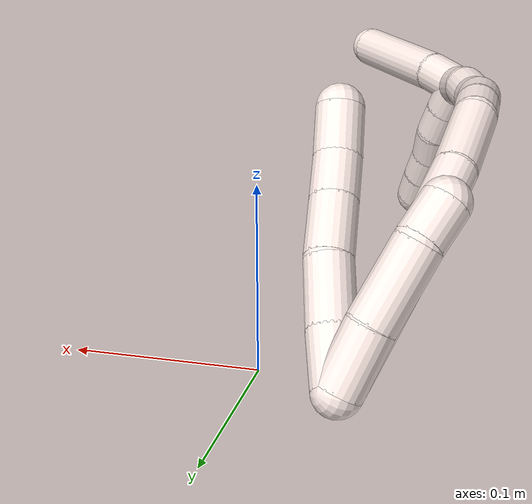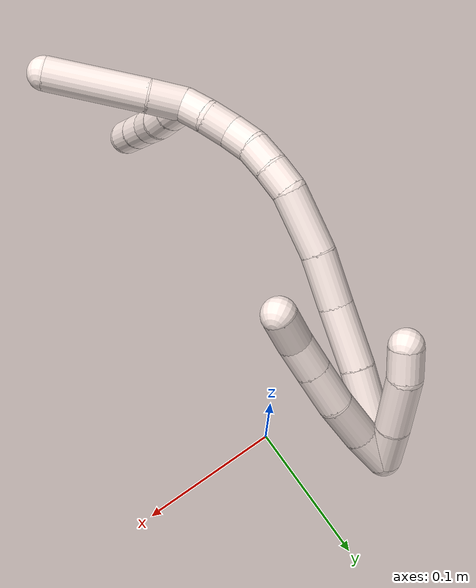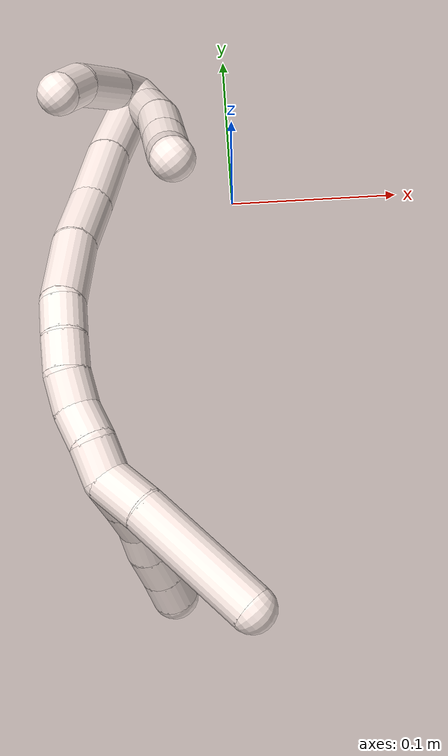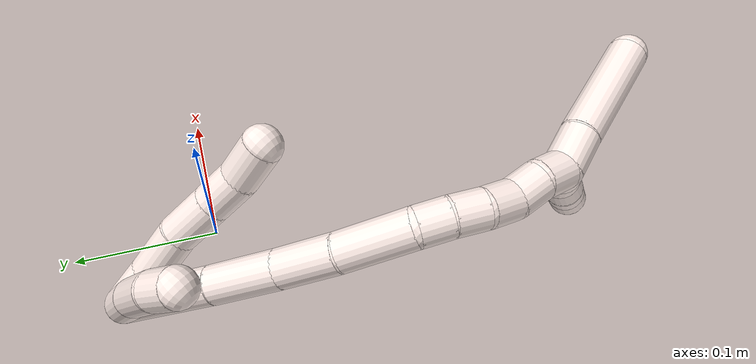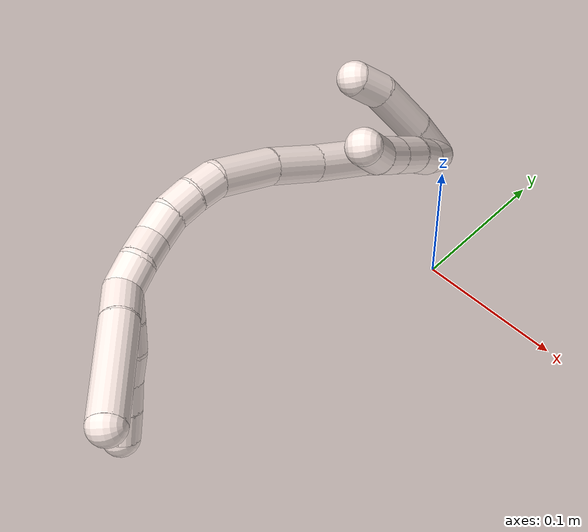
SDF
<sdf version="1.7">
 <world name="default">
  <model name="11">
   <static>0</static>
   <link name="11">
    <collision name="collision-cylinder-e_1_2_8">
     <pose>-0.011256 -0.010066 0.000415 1.52961 -0.840747 -0.810474</pose>
     <geometry><cylinder><radius>0.0125</radius><length>0.030211</length></cylinder></geometry>
     <surface>
      <friction><ode><mu>1.16</mu><mu2>1.16</mu2><slip1>0</slip1><slip2>0</slip2></ode></friction>
      <contact><ode><kp>1e+06</kp><kd>1</kd><max_vel>0</max_vel><min_depth>0.001</min_depth></ode></contact>
     </surface>
    </collision>
    <visual name="visual-cylinder-e_1_2_8">
     <pose>-0.011256 -0.010066 0.000415 1.52961 -0.840747 -0.810474</pose>
     <geometry><cylinder><radius>0.0125</radius><length>0.030211</length></cylinder></geometry>
     <material><ambient>1 0.933333 0.909804 1</ambient></material>
    </visual>
    <collision name="collision-cylinder-e_2_8_9">
     <pose>-0.036887 -0.0306 0.00135 1.52114 -0.940763 -0.901215</pose>
     <geometry><cylinder><radius>0.0125</radius><length>0.035581</length></cylinder></geometry>
     <surface>
      <friction><ode><mu>1.16</mu><mu2>1.16</mu2><slip1>0</slip1><slip2>0</slip2></ode></friction>
      <contact><ode><kp>1e+06</kp><kd>1</kd><max_vel>0</max_vel><min_depth>0.001</min_depth></ode></contact>
     </surface>
    </collision>
    <visual name="visual-cylinder-e_2_8_9">
     <pose>-0.036887 -0.0306 0.00135 1.52114 -0.940763 -0.901215</pose>
     <geometry><cylinder><radius>0.0125</radius><length>0.035581</length></cylinder></geometry>
     <material><ambient>1 0.933333 0.909804 1</ambient></material>
    </visual>
    <collision name="collision-cylinder-e_3_9_10">
     <pose>-0.063589 -0.050959 -0.000145 1.77174 -0.884701 -1.05096</pose>
     <geometry><cylinder><radius>0.0125</radius><length>0.031866</length></cylinder></geometry>
     <surface>
      <friction><ode><mu>1.16</mu><mu2>1.16</mu2><slip1>0</slip1><slip2>0</slip2></ode></friction>
      <contact><ode><kp>1e+06</kp><kd>1</kd><max_vel>0</max_vel><min_depth>0.001</min_depth></ode></contact>
     </surface>
    </collision>
    <visual name="visual-cylinder-e_3_9_10">
     <pose>-0.063589 -0.050959 -0.000145 1.77174 -0.884701 -1.05096</pose>
     <geometry><cylinder><radius>0.0125</radius><length>0.031866</length></cylinder></geometry>
     <material><ambient>1 0.933333 0.909804 1</ambient></material>
    </visual>
    <collision name="collision-cylinder-e_4_10_11">
     <pose>-0.085755 -0.068531 -0.003645 1.76192 -0.898983 -1.05822</pose>
     <geometry><cylinder><radius>0.0125</radius><length>0.025138</length></cylinder></geometry>
     <surface>
      <friction><ode><mu>1.16</mu><mu2>1.16</mu2><slip1>0</slip1><slip2>0</slip2></ode></friction>
      <contact><ode><kp>1e+06</kp><kd>1</kd><max_vel>0</max_vel><min_depth>0.001</min_depth></ode></contact>
     </surface>
    </collision>
    <visual name="visual-cylinder-e_4_10_11">
     <pose>-0.085755 -0.068531 -0.003645 1.76192 -0.898983 -1.05822</pose>
     <geometry><cylinder><radius>0.0125</radius><length>0.025138</length></cylinder></geometry>
     <material><ambient>1 0.933333 0.909804 1</ambient></material>
    </visual>
    <collision name="collision-cylinder-e_5_11_6">
     <pose>-0.107667 -0.082472 -0.00495 1.54186 -1.0923 -1.06679</pose>
     <geometry><cylinder><radius>0.0125</radius><length>0.027203</length></cylinder></geometry>
     <surface>
      <friction><ode><mu>1.16</mu><mu2>1.16</mu2><slip1>0</slip1><slip2>0</slip2></ode></friction>
      <contact><ode><kp>1e+06</kp><kd>1</kd><max_vel>0</max_vel><min_depth>0.001</min_depth></ode></contact>
     </surface>
    </collision>
    <visual name="visual-cylinder-e_5_11_6">
     <pose>-0.107667 -0.082472 -0.00495 1.54186 -1.0923 -1.06679</pose>
     <geometry><cylinder><radius>0.0125</radius><length>0.027203</length></cylinder></geometry>
     <material><ambient>1 0.933333 0.909804 1</ambient></material>
    </visual>
    <collision name="collision-cylinder-e_1_2_12">
     <pose>-0.016352 -2.8e-05 -0.003467 3.13342 -1.36188 -3.13151</pose>
     <geometry><cylinder><radius>0.0125</radius><length>0.033431</length></cylinder></geometry>
     <surface>
      <friction><ode><mu>1.16</mu><mu2>1.16</mu2><slip1>0</slip1><slip2>0</slip2></ode></friction>
      <contact><ode><kp>1e+06</kp><kd>1</kd><max_vel>0</max_vel><min_depth>0.001</min_depth></ode></contact>
     </surface>
    </collision>
    <visual name="visual-cylinder-e_1_2_12">
     <pose>-0.016352 -2.8e-05 -0.003467 3.13342 -1.36188 -3.13151</pose>
     <geometry><cylinder><radius>0.0125</radius><length>0.033431</length></cylinder></geometry>
     <material><ambient>1 0.933333 0.909804 1</ambient></material>
    </visual>
    <collision name="collision-cylinder-e_2_12_13">
     <pose>-0.053475 -0.000686 -0.013161 3.04095 -1.27811 -3.00624</pose>
     <geometry><cylinder><radius>0.0125</radius><length>0.043387</length></cylinder></geometry>
     <surface>
      <friction><ode><mu>1.16</mu><mu2>1.16</mu2><slip1>0</slip1><slip2>0</slip2></ode></friction>
      <contact><ode><kp>1e+06</kp><kd>1</kd><max_vel>0</max_vel><min_depth>0.001</min_depth></ode></contact>
     </surface>
    </collision>
    <visual name="visual-cylinder-e_2_12_13">
     <pose>-0.053475 -0.000686 -0.013161 3.04095 -1.27811 -3.00624</pose>
     <geometry><cylinder><radius>0.0125</radius><length>0.043387</length></cylinder></geometry>
     <material><ambient>1 0.933333 0.909804 1</ambient></material>
    </visual>
    <collision name="collision-cylinder-e_3_13_5">
     <pose>-0.084255 -0.003877 -0.024642 2.68771 -1.04222 -2.37667</pose>
     <geometry><cylinder><radius>0.0125</radius><length>0.023182</length></cylinder></geometry>
     <surface>
      <friction><ode><mu>1.16</mu><mu2>1.16</mu2><slip1>0</slip1><slip2>0</slip2></ode></friction>
      <contact><ode><kp>1e+06</kp><kd>1</kd><max_vel>0</max_vel><min_depth>0.001</min_depth></ode></contact>
     </surface>
    </collision>
    <visual name="visual-cylinder-e_3_13_5">
     <pose>-0.084255 -0.003877 -0.024642 2.68771 -1.04222 -2.37667</pose>
     <geometry><cylinder><radius>0.0125</radius><length>0.023182</length></cylinder></geometry>
     <material><ambient>1 0.933333 0.909804 1</ambient></material>
    </visual>
    <collision name="collision-cylinder-e_1_2_14">
     <pose>-0.023428 -0.017752 -0.01742 2.34675 -0.755524 -1.51464</pose>
     <geometry><cylinder><radius>0.0125</radius><length>0.068336</length></cylinder></geometry>
     <surface>
      <friction><ode><mu>1.16</mu><mu2>1.16</mu2><slip1>0</slip1><slip2>0</slip2></ode></friction>
      <contact><ode><kp>1e+06</kp><kd>1</kd><max_vel>0</max_vel><min_depth>0.001</min_depth></ode></contact>
     </surface>
    </collision>
    <visual name="visual-cylinder-e_1_2_14">
     <pose>-0.023428 -0.017752 -0.01742 2.34675 -0.755524 -1.51464</pose>
     <geometry><cylinder><radius>0.0125</radius><length>0.068336</length></cylinder></geometry>
     <material><ambient>1 0.933333 0.909804 1</ambient></material>
    </visual>
    <collision name="collision-cylinder-e_2_14_15">
     <pose>-0.061849 -0.048606 -0.046395 2.29352 -0.709259 -1.37395</pose>
     <geometry><cylinder><radius>0.0125</radius><length>0.046043</length></cylinder></geometry>
     <surface>
      <friction><ode><mu>1.16</mu><mu2>1.16</mu2><slip1>0</slip1><slip2>0</slip2></ode></friction>
      <contact><ode><kp>1e+06</kp><kd>1</kd><max_vel>0</max_vel><min_depth>0.001</min_depth></ode></contact>
     </surface>
    </collision>
    <visual name="visual-cylinder-e_2_14_15">
     <pose>-0.061849 -0.048606 -0.046395 2.29352 -0.709259 -1.37395</pose>
     <geometry><cylinder><radius>0.0125</radius><length>0.046043</length></cylinder></geometry>
     <material><ambient>1 0.933333 0.909804 1</ambient></material>
    </visual>
    <collision name="collision-cylinder-e_3_15_16">
     <pose>-0.090209 -0.072367 -0.067134 2.28208 -0.759778 -1.43332</pose>
     <geometry><cylinder><radius>0.0125</radius><length>0.038813</length></cylinder></geometry>
     <surface>
      <friction><ode><mu>1.16</mu><mu2>1.16</mu2><slip1>0</slip1><slip2>0</slip2></ode></friction>
      <contact><ode><kp>1e+06</kp><kd>1</kd><max_vel>0</max_vel><min_depth>0.001</min_depth></ode></contact>
     </surface>
    </collision>
    <visual name="visual-cylinder-e_3_15_16">
     <pose>-0.090209 -0.072367 -0.067134 2.28208 -0.759778 -1.43332</pose>
     <geometry><cylinder><radius>0.0125</radius><length>0.038813</length></cylinder></geometry>
     <material><ambient>1 0.933333 0.909804 1</ambient></material>
    </visual>
    <collision name="collision-cylinder-e_4_16_17">
     <pose>-0.117924 -0.09809 -0.086737 2.1758 -0.664524 -1.16413</pose>
     <geometry><cylinder><radius>0.0125</radius><length>0.046534</length></cylinder></geometry>
     <surface>
      <friction><ode><mu>1.16</mu><mu2>1.16</mu2><slip1>0</slip1><slip2>0</slip2></ode></friction>
      <contact><ode><kp>1e+06</kp><kd>1</kd><max_vel>0</max_vel><min_depth>0.001</min_depth></ode></contact>
     </surface>
    </collision>
    <visual name="visual-cylinder-e_4_16_17">
     <pose>-0.117924 -0.09809 -0.086737 2.1758 -0.664524 -1.16413</pose>
     <geometry><cylinder><radius>0.0125</radius><length>0.046534</length></cylinder></geometry>
     <material><ambient>1 0.933333 0.909804 1</ambient></material>
    </visual>
    <collision name="collision-cylinder-e_5_17_18">
     <pose>-0.135567 -0.121367 -0.10188 2.09299 -0.334621 -0.568296</pose>
     <geometry><cylinder><radius>0.0125</radius><length>0.020063</length></cylinder></geometry>
     <surface>
      <friction><ode><mu>1.16</mu><mu2>1.16</mu2><slip1>0</slip1><slip2>0</slip2></ode></friction>
      <contact><ode><kp>1e+06</kp><kd>1</kd><max_vel>0</max_vel><min_depth>0.001</min_depth></ode></contact>
     </surface>
    </collision>
    <visual name="visual-cylinder-e_5_17_18">
     <pose>-0.135567 -0.121367 -0.10188 2.09299 -0.334621 -0.568296</pose>
     <geometry><cylinder><radius>0.0125</radius><length>0.020063</length></cylinder></geometry>
     <material><ambient>1 0.933333 0.909804 1</ambient></material>
    </visual>
    <collision name="collision-cylinder-e_6_18_19">
     <pose>-0.140851 -0.138017 -0.111657 2.11017 -0.199664 -0.349778</pose>
     <geometry><cylinder><radius>0.0125</radius><length>0.020065</length></cylinder></geometry>
     <surface>
      <friction><ode><mu>1.16</mu><mu2>1.16</mu2><slip1>0</slip1><slip2>0</slip2></ode></friction>
      <contact><ode><kp>1e+06</kp><kd>1</kd><max_vel>0</max_vel><min_depth>0.001</min_depth></ode></contact>
     </surface>
    </collision>
    <visual name="visual-cylinder-e_6_18_19">
     <pose>-0.140851 -0.138017 -0.111657 2.11017 -0.199664 -0.349778</pose>
     <geometry><cylinder><radius>0.0125</radius><length>0.020065</length></cylinder></geometry>
     <material><ambient>1 0.933333 0.909804 1</ambient></material>
    </visual>
    <collision name="collision-cylinder-e_7_19_20">
     <pose>-0.142716 -0.155665 -0.120713 1.98105 0.012502 0.01907</pose>
     <geometry><cylinder><radius>0.0125</radius><length>0.02009</length></cylinder></geometry>
     <surface>
      <friction><ode><mu>1.16</mu><mu2>1.16</mu2><slip1>0</slip1><slip2>0</slip2></ode></friction>
      <contact><ode><kp>1e+06</kp><kd>1</kd><max_vel>0</max_vel><min_depth>0.001</min_depth></ode></contact>
     </surface>
    </collision>
    <visual name="visual-cylinder-e_7_19_20">
     <pose>-0.142716 -0.155665 -0.120713 1.98105 0.012502 0.01907</pose>
     <geometry><cylinder><radius>0.0125</radius><length>0.02009</length></cylinder></geometry>
     <material><ambient>1 0.933333 0.909804 1</ambient></material>
    </visual>
    <collision name="collision-cylinder-e_8_20_21">
     <pose>-0.144714 -0.174536 -0.126363 1.73939 -0.213478 -0.2525</pose>
     <geometry><cylinder><radius>0.0125</radius><length>0.020055</length></cylinder></geometry>
     <surface>
      <friction><ode><mu>1.16</mu><mu2>1.16</mu2><slip1>0</slip1><slip2>0</slip2></ode></friction>
      <contact><ode><kp>1e+06</kp><kd>1</kd><max_vel>0</max_vel><min_depth>0.001</min_depth></ode></contact>
     </surface>
    </collision>
    <visual name="visual-cylinder-e_8_20_21">
     <pose>-0.144714 -0.174536 -0.126363 1.73939 -0.213478 -0.2525</pose>
     <geometry><cylinder><radius>0.0125</radius><length>0.020055</length></cylinder></geometry>
     <material><ambient>1 0.933333 0.909804 1</ambient></material>
    </visual>
    <collision name="collision-cylinder-e_9_21_1">
     <pose>-0.146355 -0.193729 -0.130993 1.87427 0.048366 0.065816</pose>
     <geometry><cylinder><radius>0.0125</radius><length>0.02</length></cylinder></geometry>
     <surface>
      <friction><ode><mu>1.16</mu><mu2>1.16</mu2><slip1>0</slip1><slip2>0</slip2></ode></friction>
      <contact><ode><kp>1e+06</kp><kd>1</kd><max_vel>0</max_vel><min_depth>0.001</min_depth></ode></contact>
     </surface>
    </collision>
    <visual name="visual-cylinder-e_9_21_1">
     <pose>-0.146355 -0.193729 -0.130993 1.87427 0.048366 0.065816</pose>
     <geometry><cylinder><radius>0.0125</radius><length>0.02</length></cylinder></geometry>
     <material><ambient>1 0.933333 0.909804 1</ambient></material>
    </visual>
    <collision name="collision-cylinder-e_1_1_22">
     <pose>-0.148061 -0.215652 -0.131019 1.33642 -0.170207 -0.134474</pose>
     <geometry><cylinder><radius>0.0125</radius><length>0.025851</length></cylinder></geometry>
     <surface>
      <friction><ode><mu>1.16</mu><mu2>1.16</mu2><slip1>0</slip1><slip2>0</slip2></ode></friction>
      <contact><ode><kp>1e+06</kp><kd>1</kd><max_vel>0</max_vel><min_depth>0.001</min_depth></ode></contact>
     </surface>
    </collision>
    <visual name="visual-cylinder-e_1_1_22">
     <pose>-0.148061 -0.215652 -0.131019 1.33642 -0.170207 -0.134474</pose>
     <geometry><cylinder><radius>0.0125</radius><length>0.025851</length></cylinder></geometry>
     <material><ambient>1 0.933333 0.909804 1</ambient></material>
    </visual>
    <collision name="collision-cylinder-e_2_22_4">
     <pose>-0.153052 -0.264497 -0.121916 1.40381 -0.075623 -0.063952</pose>
     <geometry><cylinder><radius>0.0125</radius><length>0.074149</length></cylinder></geometry>
     <surface>
      <friction><ode><mu>1.16</mu><mu2>1.16</mu2><slip1>0</slip1><slip2>0</slip2></ode></friction>
      <contact><ode><kp>1e+06</kp><kd>1</kd><max_vel>0</max_vel><min_depth>0.001</min_depth></ode></contact>
     </surface>
    </collision>
    <visual name="visual-cylinder-e_2_22_4">
     <pose>-0.153052 -0.264497 -0.121916 1.40381 -0.075623 -0.063952</pose>
     <geometry><cylinder><radius>0.0125</radius><length>0.074149</length></cylinder></geometry>
     <material><ambient>1 0.933333 0.909804 1</ambient></material>
    </visual>
    <collision name="collision-cylinder-e_1_1_23">
     <pose>-0.137697 -0.208789 -0.135595 1.85546 0.957057 1.21105</pose>
     <geometry><cylinder><radius>0.0125</radius><length>0.02</length></cylinder></geometry>
     <surface>
      <friction><ode><mu>1.16</mu><mu2>1.16</mu2><slip1>0</slip1><slip2>0</slip2></ode></friction>
      <contact><ode><kp>1e+06</kp><kd>1</kd><max_vel>0</max_vel><min_depth>0.001</min_depth></ode></contact>
     </surface>
    </collision>
    <visual name="visual-cylinder-e_1_1_23">
     <pose>-0.137697 -0.208789 -0.135595 1.85546 0.957057 1.21105</pose>
     <geometry><cylinder><radius>0.0125</radius><length>0.02</length></cylinder></geometry>
     <material><ambient>1 0.933333 0.909804 1</ambient></material>
    </visual>
    <collision name="collision-cylinder-e_2_23_24">
     <pose>-0.121264 -0.219638 -0.139081 1.9084 0.971553 1.28046</pose>
     <geometry><cylinder><radius>0.0125</radius><length>0.02</length></cylinder></geometry>
     <surface>
      <friction><ode><mu>1.16</mu><mu2>1.16</mu2><slip1>0</slip1><slip2>0</slip2></ode></friction>
      <contact><ode><kp>1e+06</kp><kd>1</kd><max_vel>0</max_vel><min_depth>0.001</min_depth></ode></contact>
     </surface>
    </collision>
    <visual name="visual-cylinder-e_2_23_24">
     <pose>-0.121264 -0.219638 -0.139081 1.9084 0.971553 1.28046</pose>
     <geometry><cylinder><radius>0.0125</radius><length>0.02</length></cylinder></geometry>
     <material><ambient>1 0.933333 0.909804 1</ambient></material>
    </visual>
    <collision name="collision-cylinder-e_3_24_25">
     <pose>-0.105309 -0.23019 -0.144609 2.18151 0.87848 1.4683</pose>
     <geometry><cylinder><radius>0.0125</radius><length>0.02</length></cylinder></geometry>
     <surface>
      <friction><ode><mu>1.16</mu><mu2>1.16</mu2><slip1>0</slip1><slip2>0</slip2></ode></friction>
      <contact><ode><kp>1e+06</kp><kd>1</kd><max_vel>0</max_vel><min_depth>0.001</min_depth></ode></contact>
     </surface>
    </collision>
    <visual name="visual-cylinder-e_3_24_25">
     <pose>-0.105309 -0.23019 -0.144609 2.18151 0.87848 1.4683</pose>
     <geometry><cylinder><radius>0.0125</radius><length>0.02</length></cylinder></geometry>
     <material><ambient>1 0.933333 0.909804 1</ambient></material>
    </visual>
    <collision name="collision-cylinder-e_4_25_26">
     <pose>-0.089862 -0.241224 -0.150768 1.97717 0.886639 1.24973</pose>
     <geometry><cylinder><radius>0.0125</radius><length>0.02</length></cylinder></geometry>
     <surface>
      <friction><ode><mu>1.16</mu><mu2>1.16</mu2><slip1>0</slip1><slip2>0</slip2></ode></friction>
      <contact><ode><kp>1e+06</kp><kd>1</kd><max_vel>0</max_vel><min_depth>0.001</min_depth></ode></contact>
     </surface>
    </collision>
    <visual name="visual-cylinder-e_4_25_26">
     <pose>-0.089862 -0.241224 -0.150768 1.97717 0.886639 1.24973</pose>
     <geometry><cylinder><radius>0.0125</radius><length>0.02</length></cylinder></geometry>
     <material><ambient>1 0.933333 0.909804 1</ambient></material>
    </visual>
    <collision name="collision-cylinder-e_5_26_3">
     <pose>-0.074401 -0.252699 -0.156163 2.04315 0.880645 1.31217</pose>
     <geometry><cylinder><radius>0.0125</radius><length>0.02</length></cylinder></geometry>
     <surface>
      <friction><ode><mu>1.16</mu><mu2>1.16</mu2><slip1>0</slip1><slip2>0</slip2></ode></friction>
      <contact><ode><kp>1e+06</kp><kd>1</kd><max_vel>0</max_vel><min_depth>0.001</min_depth></ode></contact>
     </surface>
    </collision>
    <visual name="visual-cylinder-e_5_26_3">
     <pose>-0.074401 -0.252699 -0.156163 2.04315 0.880645 1.31217</pose>
     <geometry><cylinder><radius>0.0125</radius><length>0.02</length></cylinder></geometry>
     <material><ambient>1 0.933333 0.909804 1</ambient></material>
    </visual>
    <collision name="collision-sphere-3">
     <pose>-0.066689 -0.258369 -0.159059 0 -0 0</pose>
     <geometry><sphere><radius>0.0125</radius></sphere></geometry>
     <surface>
      <friction><ode><mu>1.16</mu><mu2>1.16</mu2><slip1>0</slip1><slip2>0</slip2></ode></friction>
      <contact><ode><kp>1e+06</kp><kd>1</kd><max_vel>0</max_vel><min_depth>0.001</min_depth></ode></contact>
     </surface>
    </collision>
    <visual name="visual-sphere-3">
     <pose>-0.066689 -0.258369 -0.159059 0 -0 0</pose>
     <geometry><sphere><radius>0.0125</radius></sphere></geometry>
     <material><ambient>1 0.933333 0.909804 1</ambient></material>
    </visual>
    <collision name="collision-sphere-26">
     <pose>-0.082112 -0.24703 -0.153266 0 -0 0</pose>
     <geometry><sphere><radius>0.0125</radius></sphere></geometry>
     <surface>
      <friction><ode><mu>1.16</mu><mu2>1.16</mu2><slip1>0</slip1><slip2>0</slip2></ode></friction>
      <contact><ode><kp>1e+06</kp><kd>1</kd><max_vel>0</max_vel><min_depth>0.001</min_depth></ode></contact>
     </surface>
    </collision>
    <visual name="visual-sphere-26">
     <pose>-0.082112 -0.24703 -0.153266 0 -0 0</pose>
     <geometry><sphere><radius>0.0125</radius></sphere></geometry>
     <material><ambient>1 0.933333 0.909804 1</ambient></material>
    </visual>
    <collision name="collision-sphere-25">
     <pose>-0.097611 -0.235419 -0.14827 0 -0 0</pose>
     <geometry><sphere><radius>0.0125</radius></sphere></geometry>
     <surface>
      <friction><ode><mu>1.16</mu><mu2>1.16</mu2><slip1>0</slip1><slip2>0</slip2></ode></friction>
      <contact><ode><kp>1e+06</kp><kd>1</kd><max_vel>0</max_vel><min_depth>0.001</min_depth></ode></contact>
     </surface>
    </collision>
    <visual name="visual-sphere-25">
     <pose>-0.097611 -0.235419 -0.14827 0 -0 0</pose>
     <geometry><sphere><radius>0.0125</radius></sphere></geometry>
     <material><ambient>1 0.933333 0.909804 1</ambient></material>
    </visual>
    <collision name="collision-sphere-24">
     <pose>-0.113007 -0.22496 -0.140949 0 -0 0</pose>
     <geometry><sphere><radius>0.0125</radius></sphere></geometry>
     <surface>
      <friction><ode><mu>1.16</mu><mu2>1.16</mu2><slip1>0</slip1><slip2>0</slip2></ode></friction>
      <contact><ode><kp>1e+06</kp><kd>1</kd><max_vel>0</max_vel><min_depth>0.001</min_depth></ode></contact>
     </surface>
    </collision>
    <visual name="visual-sphere-24">
     <pose>-0.113007 -0.22496 -0.140949 0 -0 0</pose>
     <geometry><sphere><radius>0.0125</radius></sphere></geometry>
     <material><ambient>1 0.933333 0.909804 1</ambient></material>
    </visual>
    <collision name="collision-sphere-23">
     <pose>-0.129522 -0.214317 -0.137212 0 -0 0</pose>
     <geometry><sphere><radius>0.0125</radius></sphere></geometry>
     <surface>
      <friction><ode><mu>1.16</mu><mu2>1.16</mu2><slip1>0</slip1><slip2>0</slip2></ode></friction>
      <contact><ode><kp>1e+06</kp><kd>1</kd><max_vel>0</max_vel><min_depth>0.001</min_depth></ode></contact>
     </surface>
    </collision>
    <visual name="visual-sphere-23">
     <pose>-0.129522 -0.214317 -0.137212 0 -0 0</pose>
     <geometry><sphere><radius>0.0125</radius></sphere></geometry>
     <material><ambient>1 0.933333 0.909804 1</ambient></material>
    </visual>
    <collision name="collision-sphere-4">
     <pose>-0.155853 -0.300951 -0.115772 0 -0 0</pose>
     <geometry><sphere><radius>0.0125</radius></sphere></geometry>
     <surface>
      <friction><ode><mu>1.16</mu><mu2>1.16</mu2><slip1>0</slip1><slip2>0</slip2></ode></friction>
      <contact><ode><kp>1e+06</kp><kd>1</kd><max_vel>0</max_vel><min_depth>0.001</min_depth></ode></contact>
     </surface>
    </collision>
    <visual name="visual-sphere-4">
     <pose>-0.155853 -0.300951 -0.115772 0 -0 0</pose>
     <geometry><sphere><radius>0.0125</radius></sphere></geometry>
     <material><ambient>1 0.933333 0.909804 1</ambient></material>
    </visual>
    <collision name="collision-sphere-22">
     <pose>-0.150251 -0.228042 -0.128061 0 -0 0</pose>
     <geometry><sphere><radius>0.0125</radius></sphere></geometry>
     <surface>
      <friction><ode><mu>1.16</mu><mu2>1.16</mu2><slip1>0</slip1><slip2>0</slip2></ode></friction>
      <contact><ode><kp>1e+06</kp><kd>1</kd><max_vel>0</max_vel><min_depth>0.001</min_depth></ode></contact>
     </surface>
    </collision>
    <visual name="visual-sphere-22">
     <pose>-0.150251 -0.228042 -0.128061 0 -0 0</pose>
     <geometry><sphere><radius>0.0125</radius></sphere></geometry>
     <material><ambient>1 0.933333 0.909804 1</ambient></material>
    </visual>
    <collision name="collision-sphere-1">
     <pose>-0.145872 -0.203262 -0.133978 0 -0 0</pose>
     <geometry><sphere><radius>0.0125</radius></sphere></geometry>
     <surface>
      <friction><ode><mu>1.16</mu><mu2>1.16</mu2><slip1>0</slip1><slip2>0</slip2></ode></friction>
      <contact><ode><kp>1e+06</kp><kd>1</kd><max_vel>0</max_vel><min_depth>0.001</min_depth></ode></contact>
     </surface>
    </collision>
    <visual name="visual-sphere-1">
     <pose>-0.145872 -0.203262 -0.133978 0 -0 0</pose>
     <geometry><sphere><radius>0.0125</radius></sphere></geometry>
     <material><ambient>1 0.933333 0.909804 1</ambient></material>
    </visual>
    <collision name="collision-sphere-21">
     <pose>-0.146839 -0.184197 -0.128008 0 -0 0</pose>
     <geometry><sphere><radius>0.0125</radius></sphere></geometry>
     <surface>
      <friction><ode><mu>1.16</mu><mu2>1.16</mu2><slip1>0</slip1><slip2>0</slip2></ode></friction>
      <contact><ode><kp>1e+06</kp><kd>1</kd><max_vel>0</max_vel><min_depth>0.001</min_depth></ode></contact>
     </surface>
    </collision>
    <visual name="visual-sphere-21">
     <pose>-0.146839 -0.184197 -0.128008 0 -0 0</pose>
     <geometry><sphere><radius>0.0125</radius></sphere></geometry>
     <material><ambient>1 0.933333 0.909804 1</ambient></material>
    </visual>
    <collision name="collision-sphere-6">
     <pose>-0.119741 -0.088732 -0.004769 0 -0 0</pose>
     <geometry><sphere><radius>0.0125</radius></sphere></geometry>
     <surface>
      <friction><ode><mu>1.16</mu><mu2>1.16</mu2><slip1>0</slip1><slip2>0</slip2></ode></friction>
      <contact><ode><kp>1e+06</kp><kd>1</kd><max_vel>0</max_vel><min_depth>0.001</min_depth></ode></contact>
     </surface>
    </collision>
    <visual name="visual-sphere-6">
     <pose>-0.119741 -0.088732 -0.004769 0 -0 0</pose>
     <geometry><sphere><radius>0.0125</radius></sphere></geometry>
     <material><ambient>1 0.933333 0.909804 1</ambient></material>
    </visual>
    <collision name="collision-sphere-11">
     <pose>-0.095593 -0.076211 -0.005131 0 -0 0</pose>
     <geometry><sphere><radius>0.0125</radius></sphere></geometry>
     <surface>
      <friction><ode><mu>1.16</mu><mu2>1.16</mu2><slip1>0</slip1><slip2>0</slip2></ode></friction>
      <contact><ode><kp>1e+06</kp><kd>1</kd><max_vel>0</max_vel><min_depth>0.001</min_depth></ode></contact>
     </surface>
    </collision>
    <visual name="visual-sphere-11">
     <pose>-0.095593 -0.076211 -0.005131 0 -0 0</pose>
     <geometry><sphere><radius>0.0125</radius></sphere></geometry>
     <material><ambient>1 0.933333 0.909804 1</ambient></material>
    </visual>
    <collision name="collision-sphere-10">
     <pose>-0.075917 -0.06085 -0.002159 0 -0 0</pose>
     <geometry><sphere><radius>0.0125</radius></sphere></geometry>
     <surface>
      <friction><ode><mu>1.16</mu><mu2>1.16</mu2><slip1>0</slip1><slip2>0</slip2></ode></friction>
      <contact><ode><kp>1e+06</kp><kd>1</kd><max_vel>0</max_vel><min_depth>0.001</min_depth></ode></contact>
     </surface>
    </collision>
    <visual name="visual-sphere-10">
     <pose>-0.075917 -0.06085 -0.002159 0 -0 0</pose>
     <geometry><sphere><radius>0.0125</radius></sphere></geometry>
     <material><ambient>1 0.933333 0.909804 1</ambient></material>
    </visual>
    <collision name="collision-sphere-9">
     <pose>-0.051262 -0.041069 0.00187 0 -0 0</pose>
     <geometry><sphere><radius>0.0125</radius></sphere></geometry>
     <surface>
      <friction><ode><mu>1.16</mu><mu2>1.16</mu2><slip1>0</slip1><slip2>0</slip2></ode></friction>
      <contact><ode><kp>1e+06</kp><kd>1</kd><max_vel>0</max_vel><min_depth>0.001</min_depth></ode></contact>
     </surface>
    </collision>
    <visual name="visual-sphere-9">
     <pose>-0.051262 -0.041069 0.00187 0 -0 0</pose>
     <geometry><sphere><radius>0.0125</radius></sphere></geometry>
     <material><ambient>1 0.933333 0.909804 1</ambient></material>
    </visual>
    <collision name="collision-sphere-2">
     <geometry><sphere><radius>0.0125</radius></sphere></geometry>
     <surface>
      <friction><ode><mu>1.16</mu><mu2>1.16</mu2><slip1>0</slip1><slip2>0</slip2></ode></friction>
      <contact><ode><kp>1e+06</kp><kd>1</kd><max_vel>0</max_vel><min_depth>0.001</min_depth></ode></contact>
     </surface>
    </collision>
    <visual name="visual-sphere-2">
     <geometry><sphere><radius>0.0125</radius></sphere></geometry>
     <material><ambient>1 0.933333 0.909804 1</ambient></material>
    </visual>
    <collision name="collision-sphere-19">
     <pose>-0.142841 -0.146454 -0.116707 0 -0 0</pose>
     <geometry><sphere><radius>0.0125</radius></sphere></geometry>
     <surface>
      <friction><ode><mu>1.16</mu><mu2>1.16</mu2><slip1>0</slip1><slip2>0</slip2></ode></friction>
      <contact><ode><kp>1e+06</kp><kd>1</kd><max_vel>0</max_vel><min_depth>0.001</min_depth></ode></contact>
     </surface>
    </collision>
    <visual name="visual-sphere-19">
     <pose>-0.142841 -0.146454 -0.116707 0 -0 0</pose>
     <geometry><sphere><radius>0.0125</radius></sphere></geometry>
     <material><ambient>1 0.933333 0.909804 1</ambient></material>
    </visual>
    <collision name="collision-sphere-8">
     <pose>-0.022512 -0.020131 0.00083 0 -0 0</pose>
     <geometry><sphere><radius>0.0125</radius></sphere></geometry>
     <surface>
      <friction><ode><mu>1.16</mu><mu2>1.16</mu2><slip1>0</slip1><slip2>0</slip2></ode></friction>
      <contact><ode><kp>1e+06</kp><kd>1</kd><max_vel>0</max_vel><min_depth>0.001</min_depth></ode></contact>
     </surface>
    </collision>
    <visual name="visual-sphere-8">
     <pose>-0.022512 -0.020131 0.00083 0 -0 0</pose>
     <geometry><sphere><radius>0.0125</radius></sphere></geometry>
     <material><ambient>1 0.933333 0.909804 1</ambient></material>
    </visual>
    <collision name="collision-sphere-12">
     <pose>-0.032704 -5.7e-05 -0.006933 0 -0 0</pose>
     <geometry><sphere><radius>0.0125</radius></sphere></geometry>
     <surface>
      <friction><ode><mu>1.16</mu><mu2>1.16</mu2><slip1>0</slip1><slip2>0</slip2></ode></friction>
      <contact><ode><kp>1e+06</kp><kd>1</kd><max_vel>0</max_vel><min_depth>0.001</min_depth></ode></contact>
     </surface>
    </collision>
    <visual name="visual-sphere-12">
     <pose>-0.032704 -5.7e-05 -0.006933 0 -0 0</pose>
     <geometry><sphere><radius>0.0125</radius></sphere></geometry>
     <material><ambient>1 0.933333 0.909804 1</ambient></material>
    </visual>
    <collision name="collision-sphere-13">
     <pose>-0.074246 -0.001314 -0.019388 0 -0 0</pose>
     <geometry><sphere><radius>0.0125</radius></sphere></geometry>
     <surface>
      <friction><ode><mu>1.16</mu><mu2>1.16</mu2><slip1>0</slip1><slip2>0</slip2></ode></friction>
      <contact><ode><kp>1e+06</kp><kd>1</kd><max_vel>0</max_vel><min_depth>0.001</min_depth></ode></contact>
     </surface>
    </collision>
    <visual name="visual-sphere-13">
     <pose>-0.074246 -0.001314 -0.019388 0 -0 0</pose>
     <geometry><sphere><radius>0.0125</radius></sphere></geometry>
     <material><ambient>1 0.933333 0.909804 1</ambient></material>
    </visual>
    <collision name="collision-sphere-5">
     <pose>-0.094264 -0.00644 -0.029895 0 -0 0</pose>
     <geometry><sphere><radius>0.0125</radius></sphere></geometry>
     <surface>
      <friction><ode><mu>1.16</mu><mu2>1.16</mu2><slip1>0</slip1><slip2>0</slip2></ode></friction>
      <contact><ode><kp>1e+06</kp><kd>1</kd><max_vel>0</max_vel><min_depth>0.001</min_depth></ode></contact>
     </surface>
    </collision>
    <visual name="visual-sphere-5">
     <pose>-0.094264 -0.00644 -0.029895 0 -0 0</pose>
     <geometry><sphere><radius>0.0125</radius></sphere></geometry>
     <material><ambient>1 0.933333 0.909804 1</ambient></material>
    </visual>
    <collision name="collision-sphere-14">
     <pose>-0.046856 -0.035504 -0.03484 0 -0 0</pose>
     <geometry><sphere><radius>0.0125</radius></sphere></geometry>
     <surface>
      <friction><ode><mu>1.16</mu><mu2>1.16</mu2><slip1>0</slip1><slip2>0</slip2></ode></friction>
      <contact><ode><kp>1e+06</kp><kd>1</kd><max_vel>0</max_vel><min_depth>0.001</min_depth></ode></contact>
     </surface>
    </collision>
    <visual name="visual-sphere-14">
     <pose>-0.046856 -0.035504 -0.03484 0 -0 0</pose>
     <geometry><sphere><radius>0.0125</radius></sphere></geometry>
     <material><ambient>1 0.933333 0.909804 1</ambient></material>
    </visual>
    <collision name="collision-sphere-15">
     <pose>-0.076843 -0.061709 -0.05795 0 -0 0</pose>
     <geometry><sphere><radius>0.0125</radius></sphere></geometry>
     <surface>
      <friction><ode><mu>1.16</mu><mu2>1.16</mu2><slip1>0</slip1><slip2>0</slip2></ode></friction>
      <contact><ode><kp>1e+06</kp><kd>1</kd><max_vel>0</max_vel><min_depth>0.001</min_depth></ode></contact>
     </surface>
    </collision>
    <visual name="visual-sphere-15">
     <pose>-0.076843 -0.061709 -0.05795 0 -0 0</pose>
     <geometry><sphere><radius>0.0125</radius></sphere></geometry>
     <material><ambient>1 0.933333 0.909804 1</ambient></material>
    </visual>
    <collision name="collision-sphere-16">
     <pose>-0.103575 -0.083025 -0.076319 0 -0 0</pose>
     <geometry><sphere><radius>0.0125</radius></sphere></geometry>
     <surface>
      <friction><ode><mu>1.16</mu><mu2>1.16</mu2><slip1>0</slip1><slip2>0</slip2></ode></friction>
      <contact><ode><kp>1e+06</kp><kd>1</kd><max_vel>0</max_vel><min_depth>0.001</min_depth></ode></contact>
     </surface>
    </collision>
    <visual name="visual-sphere-16">
     <pose>-0.103575 -0.083025 -0.076319 0 -0 0</pose>
     <geometry><sphere><radius>0.0125</radius></sphere></geometry>
     <material><ambient>1 0.933333 0.909804 1</ambient></material>
    </visual>
    <collision name="collision-sphere-17">
     <pose>-0.132272 -0.113155 -0.097154 0 -0 0</pose>
     <geometry><sphere><radius>0.0125</radius></sphere></geometry>
     <surface>
      <friction><ode><mu>1.16</mu><mu2>1.16</mu2><slip1>0</slip1><slip2>0</slip2></ode></friction>
      <contact><ode><kp>1e+06</kp><kd>1</kd><max_vel>0</max_vel><min_depth>0.001</min_depth></ode></contact>
     </surface>
    </collision>
    <visual name="visual-sphere-17">
     <pose>-0.132272 -0.113155 -0.097154 0 -0 0</pose>
     <geometry><sphere><radius>0.0125</radius></sphere></geometry>
     <material><ambient>1 0.933333 0.909804 1</ambient></material>
    </visual>
    <collision name="collision-sphere-18">
     <pose>-0.138861 -0.12958 -0.106606 0 -0 0</pose>
     <geometry><sphere><radius>0.0125</radius></sphere></geometry>
     <surface>
      <friction><ode><mu>1.16</mu><mu2>1.16</mu2><slip1>0</slip1><slip2>0</slip2></ode></friction>
      <contact><ode><kp>1e+06</kp><kd>1</kd><max_vel>0</max_vel><min_depth>0.001</min_depth></ode></contact>
     </surface>
    </collision>
    <visual name="visual-sphere-18">
     <pose>-0.138861 -0.12958 -0.106606 0 -0 0</pose>
     <geometry><sphere><radius>0.0125</radius></sphere></geometry>
     <material><ambient>1 0.933333 0.909804 1</ambient></material>
    </visual>
    <collision name="collision-sphere-20">
     <pose>-0.14259 -0.164876 -0.124719 0 -0 0</pose>
     <geometry><sphere><radius>0.0125</radius></sphere></geometry>
     <surface>
      <friction><ode><mu>1.16</mu><mu2>1.16</mu2><slip1>0</slip1><slip2>0</slip2></ode></friction>
      <contact><ode><kp>1e+06</kp><kd>1</kd><max_vel>0</max_vel><min_depth>0.001</min_depth></ode></contact>
     </surface>
    </collision>
    <visual name="visual-sphere-20">
     <pose>-0.14259 -0.164876 -0.124719 0 -0 0</pose>
     <geometry><sphere><radius>0.0125</radius></sphere></geometry>
     <material><ambient>1 0.933333 0.909804 1</ambient></material>
    </visual>
    <inertial>
     <pose>-0.089347 -0.109163 -0.066949 0 -0 0</pose>
     <mass>0.75</mass>
     <inertia>
      <ixx>-1.7e-05</ixx>
      <ixy>0</ixy>
      <ixz>0</ixz>
      <iyy>-2.9e-05</iyy>
      <iyz>0</iyz>
      <izz>0.000141</izz>
     </inertia>
    </inertial>
   </link>
   <pose>-0.054487 0.063964 0.025872 0.20779 1.24523 0.813529</pose>
  </model>
 </world>
</sdf>
